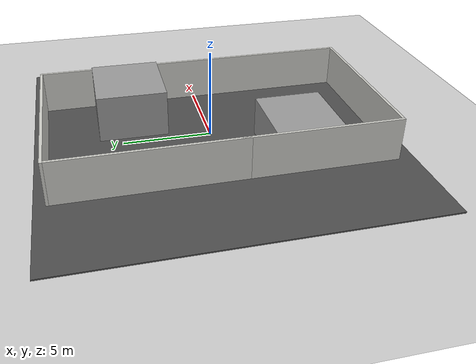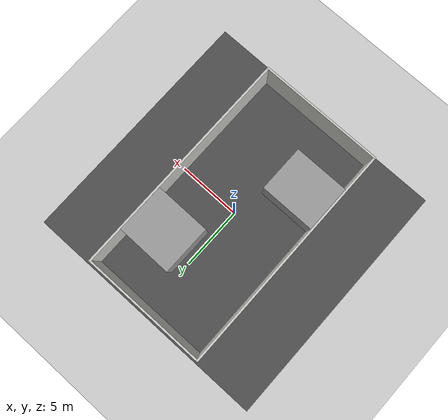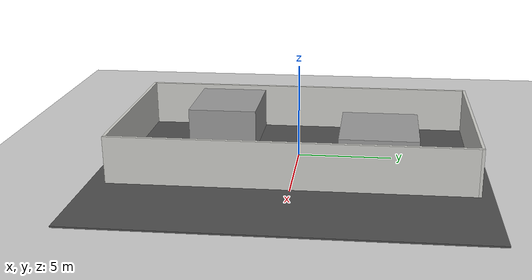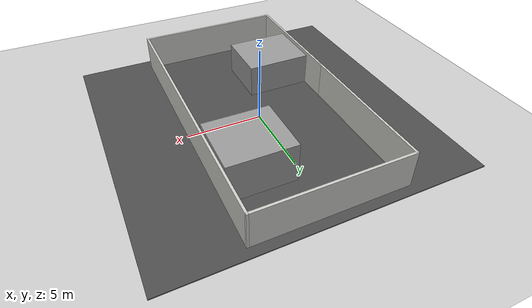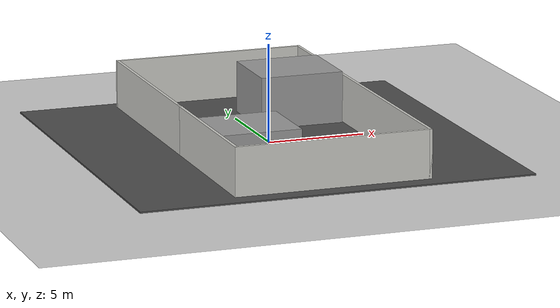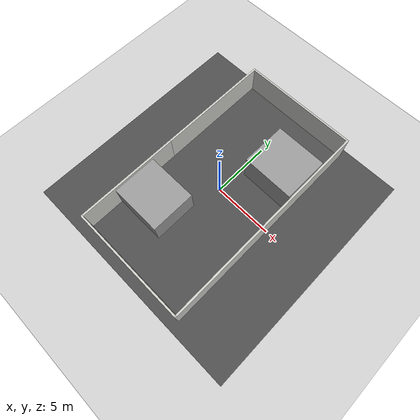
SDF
<sdf version="1.5">
 <world name="default">
  <model name="unit_box_1">
   <pose>-2.67996 -4.31454 1.14582 0 -0.000201 -0.000212</pose>
   <link name="link">
    <inertial>
     <mass>1</mass>
     <inertia>
      <ixx>0.166667</ixx>
      <ixy>0</ixy>
      <ixz>0</ixz>
      <iyy>0.166667</iyy>
      <iyz>0</iyz>
      <izz>0.166667</izz>
     </inertia>
    </inertial>
    <collision name="collision"><geometry><box><size>4.32626 3.7216 2.19251</size></box></geometry></collision>
    <visual name="visual">
     <geometry><box><size>4.32626 3.7216 2.19251</size></box></geometry>
     <material>
      <script><name>Gazebo/Grey</name><uri>file://media/materials/scripts/gazebo.material</uri></script>
     </material>
    </visual>
   </link>
  </model>
  <light name="sun" type="directional">
   <pose>0 0 10 0 -0 0</pose>
   <diffuse>0.8 0.8 0.8 1</diffuse>
   <specular>0.2 0.2 0.2 1</specular>
   <attenuation>
    <range>1000</range>
    <constant>0.9</constant>
    <linear>0.01</linear>
    <quadratic>0.001</quadratic>
   </attenuation>
   <direction>-0.5 0.1 -0.9</direction>
  </light>
  <model name="ground_plane">
   <static>1</static>
   <link name="link">
    <collision name="collision">
     <geometry><plane><normal>0 0 1</normal><size>100 100</size></plane></geometry>
     <surface><friction><ode><mu>100</mu><mu2>50</mu2></ode></friction></surface>
    </collision>
    <visual name="visual">
     <cast_shadows>0</cast_shadows>
     <geometry><plane><normal>0 0 1</normal><size>100 100</size></plane></geometry>
     <material>
      <script><uri>file://media/materials/scripts/gazebo.material</uri><name>Gazebo/Grey</name></script>
     </material>
    </visual>
   </link>
  </model>
  <physics name="default_physics" default="0" type="ode">
   <max_step_size>0.001</max_step_size>
   <real_time_factor>1</real_time_factor>
   <real_time_update_rate>1000</real_time_update_rate>
   <gravity>0 0 -9.8</gravity>
   <magnetic_field>6e-06 2.3e-05 -4.2e-05</magnetic_field>
  </physics>
  <scene><ambient>0.4 0.4 0.4 1</ambient><background>0.7 0.7 0.7 1</background><shadows>1</shadows></scene>
  <audio><device>default</device></audio>
  <spherical_coordinates>
   <surface_model>EARTH_WGS84</surface_model>
   <latitude_deg>0</latitude_deg>
   <longitude_deg>0</longitude_deg>
   <elevation>0</elevation>
   <heading_deg>0</heading_deg>
  </spherical_coordinates>
  <model name="oa_walls_0">
   <link name="Wall_0">
    <collision name="Wall_0_Collision">
     <geometry><box><size>8.75 0.15 2.5</size></box></geometry>
     <pose>0 0 1.25 0 -0 0</pose>
    </collision>
    <visual name="Wall_0_Visual">
     <pose>0 0 1.25 0 -0 0</pose>
     <geometry><box><size>8.75 0.15 2.5</size></box></geometry>
     <material>
      <script><uri>file://media/materials/scripts/gazebo.material</uri><name>Gazebo/CeilingTiled</name></script>
      <ambient>0.921569 0.807843 0.615686 1</ambient>
     </material>
    </visual>
    <pose>-4.925 -4.875 0 0 0 -1.5708</pose>
   </link>
   <link name="Wall_1">
    <collision name="Wall_1_Collision">
     <geometry><box><size>10 0.15 2.5</size></box></geometry>
     <pose>0 0 1.25 0 -0 0</pose>
    </collision>
    <visual name="Wall_1_Visual">
     <pose>0 0 1.25 0 -0 0</pose>
     <geometry><box><size>10 0.15 2.5</size></box></geometry>
     <material>
      <script><uri>file://media/materials/scripts/gazebo.material</uri><name>Gazebo/CeilingTiled</name></script>
      <ambient>0.921569 0.807843 0.615686 1</ambient>
     </material>
    </visual>
    <pose>0 -9.175 0 0 -0 0</pose>
   </link>
   <link name="Wall_2">
    <collision name="Wall_2_Collision">
     <geometry><box><size>18.5 0.15 2.5</size></box></geometry>
     <pose>0 0 1.25 0 -0 0</pose>
    </collision>
    <visual name="Wall_2_Visual">
     <pose>0 0 1.25 0 -0 0</pose>
     <geometry><box><size>18.5 0.15 2.5</size></box></geometry>
     <material>
      <script><uri>file://media/materials/scripts/gazebo.material</uri><name>Gazebo/CeilingTiled</name></script>
      <ambient>0.921569 0.807843 0.615686 1</ambient>
     </material>
    </visual>
    <pose>4.925 0 0 0 -0 1.5708</pose>
   </link>
   <link name="Wall_3">
    <collision name="Wall_3_Collision">
     <geometry><box><size>10 0.15 2.5</size></box></geometry>
     <pose>0 0 1.25 0 -0 0</pose>
    </collision>
    <visual name="Wall_3_Visual">
     <pose>0 0 1.25 0 -0 0</pose>
     <geometry><box><size>10 0.15 2.5</size></box></geometry>
     <material>
      <script><uri>file://media/materials/scripts/gazebo.material</uri><name>Gazebo/CeilingTiled</name></script>
      <ambient>0.921569 0.807843 0.615686 1</ambient>
     </material>
    </visual>
    <pose>0 9.175 0 0 -0 3.14159</pose>
   </link>
   <link name="Wall_4">
    <collision name="Wall_4_Collision">
     <geometry><box><size>10.25 0.15 2.5</size></box></geometry>
     <pose>0 0 1.25 0 -0 0</pose>
    </collision>
    <visual name="Wall_4_Visual">
     <pose>0 0 1.25 0 -0 0</pose>
     <geometry><box><size>10.25 0.15 2.5</size></box></geometry>
     <material>
      <script><uri>file://media/materials/scripts/gazebo.material</uri><name>Gazebo/CeilingTiled</name></script>
      <ambient>0.921569 0.807843 0.615686 1</ambient>
     </material>
    </visual>
    <pose>-4.925 4.125 0 0 0 -1.5708</pose>
   </link>
   <static>1</static>
  </model>
  <model name="unit_box_1_clone_0">
   <pose>2.64368 4.29041 1.36912 0 0.000123 -0.008275</pose>
   <link name="link">
    <inertial>
     <mass>1</mass>
     <inertia>
      <ixx>0.166667</ixx>
      <ixy>0</ixy>
      <ixz>0</ixz>
      <iyy>0.166667</iyy>
      <iyz>0</iyz>
      <izz>0.166667</izz>
     </inertia>
    </inertial>
    <collision name="collision"><geometry><box><size>4.32626 3.88612 2.63878</size></box></geometry></collision>
    <visual name="visual">
     <geometry><box><size>4.32626 3.88612 2.63878</size></box></geometry>
     <material>
      <script><name>Gazebo/Grey</name><uri>file://media/materials/scripts/gazebo.material</uri></script>
     </material>
    </visual>
   </link>
  </model>
  <model name="asphalt_plane">
   <static>1</static>
   <link name="link">
    <collision name="collision"><geometry><box><size>20 20 0.1</size></box></geometry></collision>
    <visual name="visual">
     <cast_shadows>0</cast_shadows>
     <geometry><box><size>20 20 0.1</size></box></geometry>
     <material>
      <script>
       <uri>model://asphalt_plane/materials/scripts</uri>
       <uri>model://asphalt_plane/materials/textures</uri>
       <name>vrc/asphalt</name>
      </script>
     </material>
    </visual>
   </link>
   <pose>0.029872 -0.133216 0 0 -0 0</pose>
  </model>
 </world>
</sdf>
